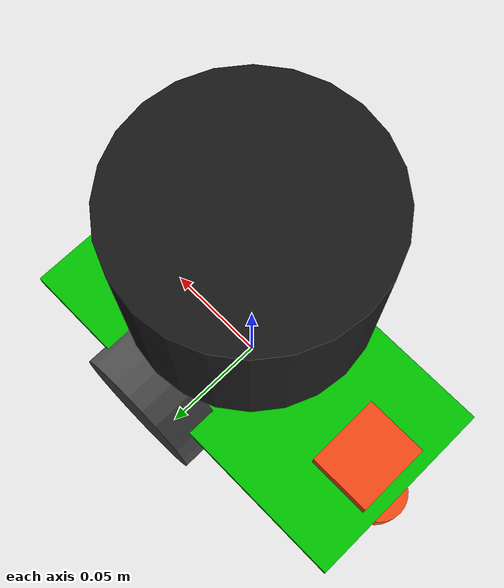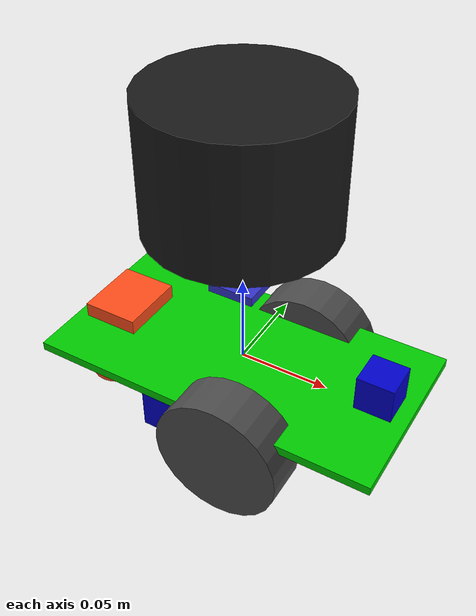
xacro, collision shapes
<?xml version="1.0"?>
<robot name="diffbot"
  xmlns:xacro="http://www.ros.org/wiki/xacro"
  xmlns:gazebo="http://www.gazebosim.org/schema/gazebo_urdf">

  <!-- === PROPIEDADES === -->
  <!-- Parámetros físicos reutilizables del robot -->
  <!-- Propiedades del chasis -->
  <xacro:property name="chassis_mass" value="0.8"/>        <!-- Masa del chasis: 800g -->
  <xacro:property name="chassis_length" value="0.195"/>    <!-- Longitud: 19.5 cm -->
  <xacro:property name="chassis_width" value="0.1"/>       <!-- Ancho: 10 cm -->
  <xacro:property name="chassis_height" value="0.005"/>    <!-- Altura: 5 mm -->

  <!-- Propiedades de las ruedas -->
  <xacro:property name="wheel_radius" value="0.035"/>      <!-- Radio de rueda: 3.5 cm -->
  <xacro:property name="wheel_separation" value="0.135"/>  <!-- Separación entre ruedas: 13.5 cm -->

  <!-- Nota: Los colores están definidos en materials.xacro -->

  <!-- === ARCHIVOS INCLUIDOS === -->
  <!-- Inclusión de archivos xacro auxiliares -->
  <xacro:include filename="$(find diffbot_description)/urdf/materials.xacro" />      <!-- Definiciones de colores -->
  <xacro:include filename="$(find diffbot_description)/urdf/inertial_macros.xacro" /> <!-- Macros para cálculo de inercias -->
  <xacro:include filename="$(find diffbot_description)/urdf/motor.xacro" />           <!-- Configuración de motores -->

  <!-- === CHASIS PRINCIPAL === -->
  <!-- Link base del robot (referencia principal) -->
  <link name="base_link">
    <visual>
      <origin xyz="0 0 0" rpy="0 0 0" />
      <geometry>
        <mesh filename="file://$(find diffbot_description)/meshes/chassis.stl"/>
      </geometry>
      <material name="green"/>
      <!-- Color verde para visualización en RViz/Gazebo -->
    </visual>

    <!-- Geometría de colisión (caja simplificada) -->
    <collision>
      <origin xyz="0 0 0" rpy="0 0 0" />
      <geometry>
        <box size="${chassis_length} ${chassis_width} ${chassis_height}" />
      </geometry>
    </collision>

    <!-- Propiedades inerciales calculadas automáticamente -->
    <xacro:inertial_box mass="${chassis_mass}" x="${chassis_length}" y="${chassis_width}" z="0.00">
      <origin xyz="0 0 0" rpy="0 0 0" />
    </xacro:inertial_box>
  </link>

  <!-- === MACRO PARA RUEDAS === -->
  <!-- Macro reutilizable para definir ruedas motrices -->
  <!-- Parámetros: prefix (izq/der), xyz (posición), axis (eje rotación), rpy (orientación) -->
  <xacro:macro name="wheel" params="prefix xyz axis rpy">

    <!-- Joint continuo para rotación libre de la rueda -->
    <joint name="${prefix}_wheel_joint" type="continuous">
      <parent link="base_link" />
      <child link="${prefix}_wheel_link" />
      <origin xyz="${xyz}" rpy="${rpy}" />     <!-- Posición y orientación de la rueda -->
      <axis xyz="${axis}" />                   <!-- Eje de rotación -->
    </joint>

    <!-- Link de la rueda -->
    <link name="${prefix}_wheel_link">
      <!-- Geometría visual (mesh 3D) -->
      <visual>
        <origin xyz="0 -0.020 0" rpy="1.5708 0 0" />  <!-- Ajuste de posición y rotación -->
        <geometry>
          <mesh filename="file://$(find diffbot_description)/meshes/wheel.stl"/>
        </geometry>
        <material name="dark_grey"/>                   <!-- Color gris oscuro -->
      </visual>

      <!-- Geometría de colisión (cilindro simplificado) -->
      <collision>
        <origin xyz="0 -0.020 0" rpy="1.5708 0 0" />
        <geometry>
          <cylinder radius="${wheel_radius}" length="0.025"/>  <!-- Radio y grosor de rueda -->
        </geometry>
        <material name="dark_grey"/>
      </collision>

      <!-- Propiedades inerciales de cilindro (masa: 150g) -->
      <xacro:inertial_cylinder mass="0.150" radius="${wheel_radius}" length="0.025">
        <origin xyz="0 0 0" rpy="0 0 0" />
      </xacro:inertial_cylinder>
    </link>

  </xacro:macro>

  <!-- === INSTANCIACIÓN DE RUEDAS Y MOTORES === -->
  <!-- Creación de ruedas izquierda y derecha con sus respectivos motores -->
  <!-- Rueda izquierda -->
  <xacro:wheel prefix="left" xyz="0.0185  ${wheel_separation/2} -0.0175" axis="0 1 0" rpy="0 1.5708 0"/>
  <!-- Rueda derecha -->
  <xacro:wheel prefix="right" xyz="0.0185 -${wheel_separation/2} -0.0175" axis="0 -1 0" rpy="0 1.5708 3.14159"/>

  <!-- Motores para tracción diferencial -->
  <xacro:motor prefix="left" chassis_width="${chassis_width}" reflect="false"/>   <!-- Motor izquierdo -->
  <xacro:motor prefix="right" chassis_width="${chassis_width}" reflect="true"/>    <!-- Motor derecho -->

  <!-- === CASTER (RUEDA LOCA) === -->
  <!-- Rueda loca trasera para estabilidad del robot -->

  <!-- BASE FIJA DEL CASTER -->

  <!-- Link de la base del caster (parte fija) -->
  <link name="caster_base">
    <!-- Geometría visual (mesh 3D) -->
    <visual>
      <origin xyz="0 0 0.0045" rpy="0 0 0" />
      <geometry>
        <mesh filename="file://$(find diffbot_description)/meshes/caster_base.stl" />
      </geometry>
      <material name="orange"/>              <!-- Color naranja -->
    </visual>

    <!-- Geometría de colisión (caja simplificada) -->
    <collision>
      <origin xyz="0 0 0.0045" rpy="0 0 0" />
      <geometry>
        <box size="0.032 0.038 0.015" />          <!-- Dimensiones de la base -->
      </geometry>
    </collision>

    <!-- Propiedades inerciales (masa: 20g) -->
    <xacro:inertial_box mass="0.02" x="0.032" y="0.038" z="0.015">
      <origin xyz="0 0 0" rpy="0 0 0" />
    </xacro:inertial_box>
  </link>

  <!-- Joint fijo que conecta la base del caster al chasis -->
  <joint name="caster_base_joint" type="fixed">
    <origin xyz="-0.075 0 -0.001" rpy="0 0 0"/>  <!-- Posición trasera del robot -->
    <parent link="base_link"/>
    <child link="caster_base"/>
  </joint>

  <!-- RUEDA MÓVIL DEL CASTER -->
  <!-- Link de la rueda loca (gira libremente) -->
  <link name="caster_wheel">
    <!-- Geometría visual (mesh 3D) -->
    <visual>
      <origin xyz="0 0 0" rpy="0 0 0" />
      <geometry>
        <mesh filename="file://$(find diffbot_description)/meshes/caster_wheel.stl" />
      </geometry>
      <material name="orange"/>              <!-- Color naranja -->
    </visual>

    <!-- Geometría de colisión (cilindro) -->
    <collision>
      <origin xyz="0 0 -0.007" rpy="0 0 0" />
      <geometry>
        <cylinder radius="0.015" length="0.016" />  <!-- Radio: 1.5cm, Grosor: 1.6cm -->
      </geometry>
    </collision>

    <!-- Propiedades inerciales de cilindro (masa: 10g) -->
    <xacro:inertial_cylinder mass="0.01" radius="0.015" length="0.016">
      <origin xyz="0 0 0" rpy="0 0 0" />
    </xacro:inertial_cylinder>
  </link>

  <!-- SOPORTE DE LA RUEDA CASTER -->
  <!-- Link del soporte que permite rotación vertical -->
  <link name="caster_wheel_support">
    <!-- Geometría visual (mesh 3D) -->
    <visual>
      <origin xyz="0 0 0" rpy="0 0 0" />
      <geometry>
        <mesh filename="file://$(find diffbot_description)/meshes/caster_wheel_support.stl" />
      </geometry>
      <material name="orange"/>              <!-- Color naranja -->
    </visual>

    <!-- Geometría de colisión (caja) -->
    <collision>
      <origin xyz="0 0 0" rpy="0 0 0" />
      <geometry>
        <box size="0.033 0.025 0.025" />          <!-- Dimensiones del soporte -->
      </geometry>
    </collision>

    <!-- Propiedades inerciales (masa: 20g) -->
    <xacro:inertial_box mass="0.02" x="0.033" y="0.025" z="0.025">
      <origin xyz="0 0 0" rpy="0 0 0" />
    </xacro:inertial_box>
  </link>

  <!-- Joint continuo para rotación vertical del soporte (eje Z) -->
  <joint name="caster_wheel_support_joint" type="continuous">
    <origin xyz="0 0 -0.015" rpy="0 0 0"/>
    <parent link="caster_base"/>
    <child link="caster_wheel_support"/>
    <axis xyz="0 0 1"/>                          <!-- Rotación alrededor del eje Z -->
  </joint>

  <!-- Joint continuo para rotación de la rueda loca (eje Y) -->
  <joint name="caster_wheel_joint" type="continuous">
    <origin xyz="-0.015 0 -0.020" rpy="0 0 0"/>
    <parent link="caster_wheel_support"/>
    <child link="caster_wheel"/>
    <axis xyz="0 1 0"/>                          <!-- Rotación alrededor del eje Y -->
  </joint>

  <!-- === CONFIGURACIÓN ROS2_CONTROL === -->
  <!-- Interfaz de hardware para control de motores en simulación -->
  <ros2_control name="GazeboSystem" type="system">
    <hardware>
      <!-- Plugin de Gazebo para integración con ROS 2 Control -->
      <plugin>gz_ros2_control/GazeboSimSystem</plugin>
    </hardware>

    <!-- Configuración del joint de la rueda izquierda -->
    <joint name="left_wheel_joint">
      <command_interface name="velocity" />      <!-- Interfaz de comando: velocidad angular -->
      <state_interface name="position" />        <!-- Estado: posición angular -->
      <state_interface name="velocity" />        <!-- Estado: velocidad angular -->
    </joint>

    <!-- Configuración del joint de la rueda derecha -->
    <joint name="right_wheel_joint">
      <command_interface name="velocity" />      <!-- Interfaz de comando: velocidad angular -->
      <state_interface name="position" />        <!-- Estado: posición angular -->
      <state_interface name="velocity" />        <!-- Estado: velocidad angular -->
    </joint>

    <!-- Configuración del joint de la rueda caster (solo lectura) -->
    <joint name="caster_wheel_joint">
      <state_interface name="position" />        <!-- Estado: posición angular -->
    </joint>

    <!-- Configuración del joint del soporte caster (solo lectura) -->
    <joint name="caster_wheel_support_joint">
      <state_interface name="position" />        <!-- Estado: posición angular -->
    </joint>
  </ros2_control>

  <!-- Plugin de Gazebo para ros2_control -->
  <gazebo>
    <!-- Plugin que conecta ros2_control con la simulación de Gazebo -->
    <plugin filename="libgz_ros2_control-system.so" name="gz_ros2_control::GazeboSimROS2ControlPlugin">
      <!-- Archivo de configuración de controladores -->
      <parameters>$(find diffbot_control)/config/controllers.yaml</parameters>
    </plugin>
  </gazebo>

  <!-- === SENSORES DEL ROBOT === -->

  <!-- NOTA: Configuración IMU anterior (comentada para referencia) -->

  <!-- === SENSOR IMU ACTIVO === -->
  <!-- Unidad de Medición Inercial para orientación y aceleración -->

  <!-- Link del IMU -->
  <link name="imu_link">
    <visual>
      <origin xyz="0 0 0" rpy="0 0 0"/>
      <geometry>
        <box size="0.025 0.025 0.005"/>
      </geometry>
      <material name="imu_color"/>
    </visual>

    <collision>
      <origin xyz="0 0 0" rpy="0 0 0"/>
      <geometry>
        <box size="0.025 0.025 0.005"/>
      </geometry>
    </collision>

    <inertial>
      <mass value="0.001"/>
      <origin xyz="0 0 0" rpy="0 0 0"/>
      <inertia ixx="0.000001" ixy="0" ixz="0" iyy="0.000001" iyz="0" izz="0.000001"/>
    </inertial>
  </link>

  <!-- Joint que conecta el IMU al link padre -->
  <joint name="imu_joint" type="fixed">
    <parent link="base_link"/>
    <child link="imu_link"/>
    <origin xyz="0.0 0.0 0.05" rpy="0 0 0"/>
  </joint>

  <!-- Configuración del sensor IMU en Gazebo -->
  <gazebo reference="imu_link">
    <sensor name="imu" type="imu">
      <plugin
        filename="gz-sim-imu-system"
        name="gz::sim::systems::Imu">
      </plugin>

      <always_on>true</always_on>
      <update_rate>100</update_rate>
      <topic>/imu/data</topic>
      <visualize>true</visualize>

      <imu>
        <!-- Configuración del acelerómetro BMI088 -->
        <linear_acceleration>
          <x>
            <noise type="gaussian">
              <mean>0.020</mean>          <!-- Zero-g Offset: 20 mg -->
              <stddev>0.0016</stddev>     <!-- Noise Density X,Y: 160 μg/√Hz -->
            </noise>
          </x>
          <y>
            <noise type="gaussian">
              <mean>0.020</mean>
              <stddev>0.0016</stddev>
            </noise>
          </y>
          <z>
            <noise type="gaussian">
              <mean>0.020</mean>
              <stddev>0.0019</stddev>     <!-- Noise Density Z: 190 μg/√Hz -->
            </noise>
          </z>
        </linear_acceleration>

        <!-- Configuración del giróscopo BMI088 -->
        <angular_velocity>
          <x>
            <noise type="gaussian">
              <mean>0.0174533</mean>      <!-- Zero-rate Offset: ±1°/s en rad -->
              <stddev>0.00174533</stddev> <!-- Output Noise: 0.1°/s en rad -->
            </noise>
          </x>
          <y>
            <noise type="gaussian">
              <mean>0.0174533</mean>
              <stddev>0.00174533</stddev>
            </noise>
          </y>
          <z>
            <noise type="gaussian">
              <mean>0.0174533</mean>
              <stddev>0.00174533</stddev>
            </noise>
          </z>
        </angular_velocity>
      </imu>
    </sensor>
  </gazebo>

  <!-- === SENSOR CAMARA === -->

  <!-- Link de la cámara -->
  <link name="cam_link">
    <visual>
      <origin xyz="0 0 0" rpy="0 0 0"/>
      <geometry>
        <box size="0.02 0.02 0.02"/>
      </geometry>
      <material name="blue"/>
    </visual>

    <collision>
      <origin xyz="0 0 0" rpy="0 0 0"/>
      <geometry>
        <box size="0.02 0.02 0.02"/>
      </geometry>
    </collision>

    <inertial>
      <mass value="0.010"/>
      <origin xyz="0 0 0" rpy="0 0 0"/>
      <inertia ixx="0.000001" ixy="0" ixz="0" iyy="0.000001" iyz="0" izz="0.000001"/>
    </inertial>
  </link>

  <!-- Joint que conecta la cámara al chasis -->
  <joint name="cam_joint" type="fixed">
    <!-- Montada al frente y un poco arriba del chasis -->
    <origin xyz="0.08 0.0 0.015" rpy="0 0 0"/>
    <!-- Inclinar la camara 15° -->
    <parent link="base_link"/>
    <child link="cam_link"/>
  </joint>

  <!-- Link óptico de la cámara (frame de referencia para las imágenes) -->
  <link name="cam_optical_link">
    <inertial>
      <mass value="0.001"/>
      <origin xyz="0 0 0" rpy="0 0 0"/>
      <inertia ixx="0.000001" ixy="0" ixz="0" iyy="0.000001" iyz="0" izz="0.000001"/>
    </inertial>
  </link>

  <!-- Joint óptico (transformación de coordenadas para la cámara) -->
  <joint name="cam_optical_joint" type="fixed">
    <origin xyz="0 0 0" rpy="${-pi/2} 0 ${-pi/2}"/>
    <parent link="cam_link"/>
    <child link="cam_optical_link"/>
  </joint>

  <!-- Configuración del sensor de cámara en Gazebo -->
  <gazebo reference="cam_link">
    <sensor name="RPiCamV2" type="camera">
      <always_on>1</always_on>
      <update_rate>25</update_rate>          <!-- Frecuencia de actualización: 25 FPS -->
      <visualize>true</visualize>            <!-- Mostrar en la interfaz de Gazebo -->

      <topic>camera</topic>                  <!-- Tópico ROS para las imágenes -->
      <camera_camera_info_topic>camera_info</camera_camera_info_topic>
      <optical_frame_id>cam_optical_link</optical_frame_id>

      <camera name="IMX219">
        <!-- Campo de visión horizontal: 62.2° = 1.085595 rad -->
        <horizontal_fov>1.085595</horizontal_fov>
        <lens>
          <intrinsics>
            <!-- Parámetros intrínsecos de la cámara Raspberry Pi V2 (IMX219) -->
            <!-- fx, fy: distancia focal en píxeles -->
            <!-- cx, cy: centro óptico en píxeles -->
            <!-- s: factor de sesgo (skew) -->
            <fx>530.47</fx>
            <fy>529.08</fy>
            <cx>319.5</cx>
            <cy>239.5</cy>
            <s>0</s>
          </intrinsics>
        </lens>
        <image>
          <!-- Resolución de imagen: 640x480 píxeles (VGA) -->
          <width>640</width>
          <height>480</height>
          <format>R8G8B8</format>              <!-- Formato RGB de 8 bits por canal -->
        </image>
        <clip>
          <!-- Distancias de clipping (planos de corte cerca/lejos) -->
          <near>0.01</near>                   <!-- Distancia mínima: 1 cm -->
          <far>25</far>                       <!-- Distancia máxima: 25 m -->
        </clip>
        <noise>
          <!-- Ruido gaussiano simulado en la imagen -->
          <type>gaussian</type>
          <mean>0</mean>                      <!-- Media del ruido: 0 -->
          <stddev>0.007</stddev>              <!-- Desviación estándar: 0.007 -->
        </noise>
      </camera>
    </sensor>

    <!-- Plugin de ROS2 para la cámara -->
    <plugin name="camera_controller" filename="libgazebo_ros_camera.so">
      <ros>
        <namespace></namespace>
        <remapping>image_raw:=camera</remapping>
        <remapping>camera_info:=camera_info</remapping>
      </ros>
      <camera_name>camera</camera_name>
      <frame_name>cam_optical_link</frame_name>
      <hack_baseline>0.07</hack_baseline>
    </plugin>
  </gazebo>

  <!-- === SENSOR LIDAR === -->

  <!-- Link del LiDAR -->
  <link name="lidar_link">
    <visual>
      <origin xyz="0 0 0" rpy="0 0 0"/>
      <geometry>
        <cylinder radius="0.05" length="0.07"/>
      </geometry>
      <material name="lidar_color"/>
    </visual>

    <collision>
      <origin xyz="0 0 0" rpy="0 0 0"/>
      <geometry>
        <cylinder radius="0.05" length="0.07"/>
      </geometry>
    </collision>

    <inertial>
      <mass value="0.190"/>
      <origin xyz="0 0 0" rpy="0 0 0"/>
      <inertia ixx="0.001" ixy="0" ixz="0" iyy="0.001" iyz="0" izz="0.001"/>
    </inertial>
  </link>

  <!-- Joint que conecta el LiDAR al link padre -->
  <joint name="lidar_joint" type="fixed">
    <parent link="base_link"/>
    <child link="lidar_link"/>
    <origin xyz="0.0 0.0 0.12" rpy="0 0 0"/>
  </joint>

  <!-- Configuración del sensor LiDAR en Gazebo -->
  <gazebo reference="lidar_link">
    <sensor name="lidar" type="gpu_lidar">
      <always_on>true</always_on>
      <update_rate>10</update_rate>        <!-- Frecuencia de escaneo: 10 Hz -->
      <topic>/scan</topic>                 <!-- Tópico ROS para datos del láser -->
      <visualize>true</visualize>          <!-- Mostrar rayos láser en Gazebo -->

      <lidar>
        <scan>
          <horizontal>
            <!-- Configuración de escaneo horizontal (360°) -->
            <samples>3200</samples>           <!-- Número de muestras: 360°/0.1125° = 3200 -->
            <resolution>1</resolution>        <!-- Resolución angular: 1 muestra por paso -->
            <min_angle>-3.14159265359</min_angle>  <!-- Ángulo mínimo: -π rad (-180°) -->
            <max_angle>3.14159265359</max_angle>   <!-- Ángulo máximo: +π rad (+180°) -->
          </horizontal>
          <!-- Al ser LiDAR 2D no tiene parámetros verticales -->
        </scan>

        <range>
          <!-- Configuración del rango de detección -->
          <min>0.05</min>                   <!-- Distancia mínima: 5 cm -->
          <max>15.0</max>                   <!-- Distancia máxima: 15 m -->
          <resolution>0.010</resolution>    <!-- Resolución de distancia: 1 cm -->
        </range>

        <noise>
          <!-- Ruido gaussiano en las mediciones -->
          <type>gaussian</type>
          <mean>0.0</mean>                  <!-- Media del ruido: 0 -->
          <stddev>0.030</stddev>            <!-- Precisión: ±3 cm (1σ) -->
        </noise>
      </lidar>
    </sensor>
  </gazebo>

  <!-- Plugin para sensores en Gazebo -->
  <gazebo>
    <plugin
      filename="gz-sim-sensors-system"
      name="gz::sim::systems::Sensors">
      <render_engine>ogre2</render_engine>
    </plugin>
  </gazebo>

  <!-- Plugin para odometría precisa de Gazebo -->
  <gazebo>
    <plugin filename="gz-sim-odometry-publisher-system"
            name="gz::sim::systems::OdometryPublisher">
      <odom_frame>odom</odom_frame>
      <robot_base_frame>base_link</robot_base_frame>
      <dimensions>2</dimensions>
    </plugin>
  </gazebo>

</robot>

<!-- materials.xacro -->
<robot xmlns:xacro= "http://www.ros.org/wiki/xacro" >
     <!-- RVIZ material RGBA definition -->

    <material name="red">
        <color rgba="0.8 0.0 0.0 1.0"/>
    </material>

    <!-- Sensor-specific materials -->
    <material name="imu_color">
        <color rgba="0.2 0.2 0.8 1.0"/>
    </material>

    <material name="lidar_color">
        <color rgba="0.1 0.1 0.1 1.0"/>
    </material>

    <material name="green">
        <color rgba="0.0 0.8 0.0 1.0"/>
    </material>
    <material name="blue">
        <color rgba="0.0 0.0 0.8 1.0"/>
    </material>
    <material name="black">
        <color rgba="0 0 0 1"/>
    </material>
    <material name="white">
        <color rgba="1 1 1 1"/>
    </material>

    <material name="orange">
        <color rgba="1 0.3 0.1 1"/>
    </material>

    <material name="silver">
        <color rgba="0.79 0.82 0.93 1"/>
    </material>
    <material name="dark_grey">
        <color rgba="0.3 0.3 0.3 1"/>
    </material>
</robot>

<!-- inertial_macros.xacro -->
<robot xmlns:xacro="http://www.ros.org/wiki/xacro" >
    <!-- Specify some standard inertial calculations https://en.wikipedia.org/wiki/List_of_moments_of_inertia -->
    <!-- These make use of xacro's mathematical functionality -->

    <xacro:macro name="inertial_sphere" params="mass radius *origin">
        <inertial>
            <xacro:insert_block name="origin"/>
            <mass value="${mass}" />
            <inertia ixx="${(2/5) * mass * (radius*radius)}" ixy="0.0" ixz="0.0"
                    iyy="${(2/5) * mass * (radius*radius)}" iyz="0.0"
                    izz="${(2/5) * mass * (radius*radius)}" />
        </inertial>
    </xacro:macro>

    <xacro:macro name="inertial_box" params="mass x y z *origin">
        <inertial>
            <xacro:insert_block name="origin"/>
            <mass value="${mass}" />
            <inertia ixx="${(1/12) * mass * (y*y+z*z)}" ixy="0.0" ixz="0.0"
                    iyy="${(1/12) * mass * (x*x+z*z)}" iyz="0.0"
                    izz="${(1/12) * mass * (x*x+y*y)}" />
        </inertial>
    </xacro:macro>

    <xacro:macro name="inertial_cylinder" params="mass length radius *origin">
        <inertial>
            <xacro:insert_block name="origin"/>
            <mass value="${mass}" />
            <inertia ixx="${(1/12) * mass * (3*radius*radius + length*length)}" ixy="0.0" ixz="0.0"
                    iyy="${(1/12) * mass * (3*radius*radius + length*length)}" iyz="0.0"
                    izz="${(1/2) * mass * (radius*radius)}" />
        </inertial>
    </xacro:macro>

    <xacro:macro name="dummy_inertial">
        <inertial>
            <origin xyz="0 0 0" rpy="0 0 0"/>
            <mass value="0.001"/>
            <inertia ixx="0.00001" ixy="0" ixz="0"
                     iyy="0.00001" iyz="0"
                     izz="0.00001"/>
        </inertial>
    </xacro:macro>

</robot>

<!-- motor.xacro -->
<robot xmlns:xacro="http://ros.org/wiki/xacro"
       xmlns:gazebo="http://www.gazebosim.org/schema/gazebo_urdf">

    <xacro:macro name="motor" params="prefix chassis_width:=0 reflect:=false">
        <!-- Parámetros -->
        <xacro:property name="motor_mass" value="0.1"/>
        <xacro:property name="motor_x_size" value="0.07"/> <!-- 70mm -->
        <xacro:property name="motor_y_size" value="0.0188"/> <!-- 18.8mm -->
        <xacro:property name="motor_z_size" value="0.0225"/> <!-- 22.5mm -->

        <xacro:property name="motor_x_offset" value="0.0015"/>
        <xacro:property name="motor_y_offset" value="0.0216"/>
        <xacro:property name="motor_z_offset" value="-0.017"/>

        <xacro:property name="pos_x_joint" value="${motor_x_offset}"/>
        <xacro:property name="pos_y_joint" value="${(chassis_width/2) - motor_y_offset + (motor_y_size/2)}"/>
        <xacro:property name="pos_z_joint" value="${motor_z_offset}"/>

        <!-- Link del motor -->
        <link name="${prefix}_motor">
            <!-- Visual -->
            <visual>
                <origin xyz="0 0 0" rpy="0 0 0"/>
                <geometry>
                    <xacro:if value="${reflect}">
                        <mesh filename="file://$(find diffbot_description)/meshes/motor.stl" scale="1 -1 1"/>
                    </xacro:if>
                    <xacro:unless value="${reflect}">
                        <mesh filename="file://$(find diffbot_description)/meshes/motor.stl"/>
                    </xacro:unless>
                </geometry>
                <material name="motor_blue">
                    <color rgba="0.0 0.0 0.8 1.0"/>
                </material>
            </visual>

            <!-- Colisión -->
            <collision>
                <origin xyz="0 0 0" rpy="0 0 0"/>
                <geometry>
                    <box size="${motor_x_size} ${motor_y_size} ${motor_z_size}"/>
                </geometry>
            </collision>

            <!-- Inercia -->
            <xacro:inertial_box mass="${motor_mass}" x="${motor_x_size}" y="${motor_y_size}" z="${motor_z_size}">
                <origin xyz="0 0 0" rpy="0 0 0"/>
            </xacro:inertial_box>
        </link>

        <!-- Joint del motor -->
        <joint name="${prefix}_motor_joint" type="fixed">
            <parent link="base_link"/>
            <child link="${prefix}_motor"/>

            <xacro:if value="${reflect}">
                <origin xyz="${pos_x_joint} ${-1 * pos_y_joint} ${pos_z_joint}" rpy="0 0 0"/>
            </xacro:if>
            <xacro:unless value="${reflect}">
                <origin xyz="${pos_x_joint} ${pos_y_joint} ${pos_z_joint}" rpy="0 0 0"/>
            </xacro:unless>
        </joint>
    </xacro:macro>
</robot>
